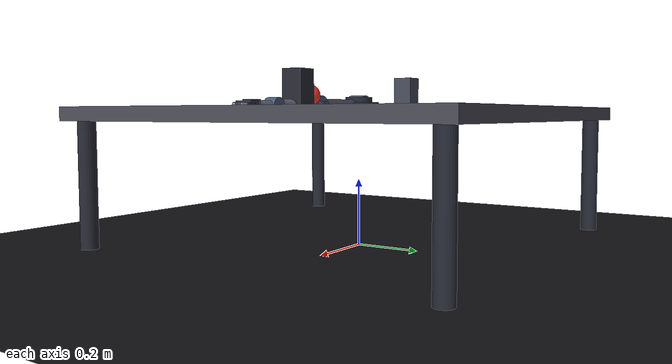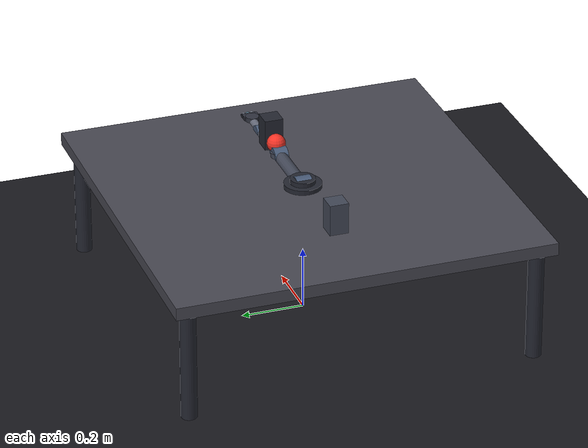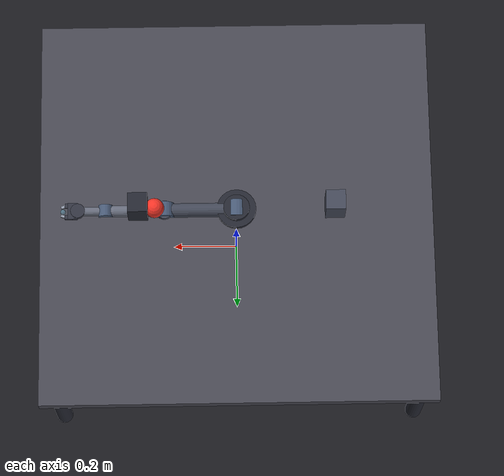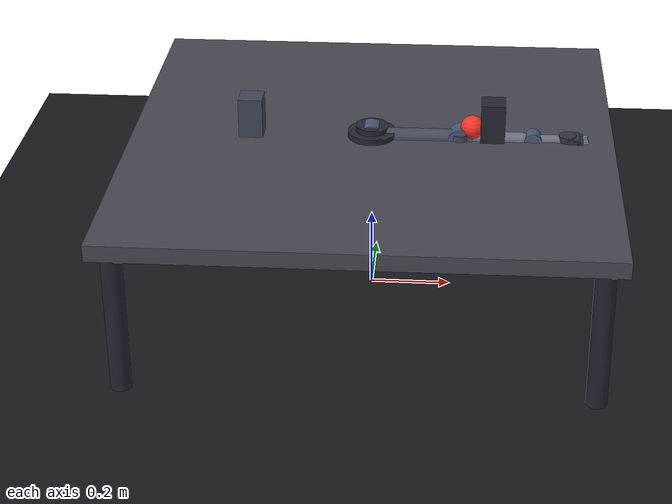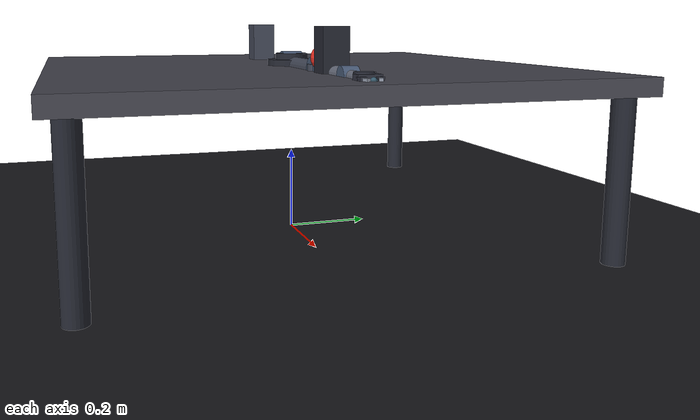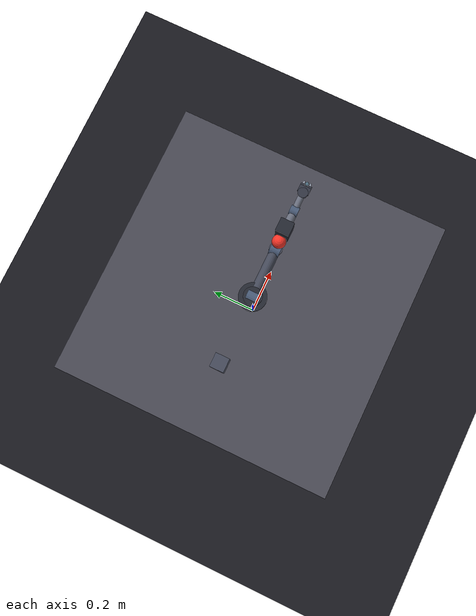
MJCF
<mujoco model="4dof_arm">

  <compiler angle="radian" coordinate="local"/>

  <option timestep="0.002" gravity="0 0 -9.81" integrator="implicit">
    <flag warmstart="enable"/>
  </option>

  <visual>
    <global offwidth="1280" offheight="720"/>
    <headlight diffuse="0.4 0.4 0.5" ambient="0.15 0.15 0.2" specular="0.3 0.3 0.3"/>
    <quality shadowsize="4096"/>
    <map fogstart="3" fogend="10"/>
    <rgba fog="0.04 0.04 0.08 1"/>
  </visual>

  <default>
    <joint armature="0.01" damping="0.5" limited="true"/>
    <geom contype="1" conaffinity="1" friction="0.5 0.1 0.1"/>
    <position kp="40" ctrlrange="-2.5 2.5"/>
  </default>

  <asset>
    <texture name="grid" type="2d" builtin="checker" width="512" height="512"
             rgb1="0.08 0.08 0.10" rgb2="0.12 0.12 0.14"/>
    <material name="grid_mat" texture="grid" texrepeat="5 5" reflectance="0.1"/>

    <!-- Robot materials — Gunmetal & Ice industrial palette -->
    <material name="metal_dark" rgba="0.14 0.15 0.19 1" specular="0.85" shininess="0.95"/>
    <material name="metal_blue" rgba="0.26 0.28 0.34 1" specular="0.7" shininess="0.8"/>
    <material name="metal_light" rgba="0.40 0.42 0.48 1" specular="0.75" shininess="0.85"/>
    <material name="joint_orange" rgba="0.28 0.35 0.46 1" specular="0.9" shininess="0.95"/>
    <material name="gripper_mat" rgba="0.19 0.20 0.25 1" specular="0.6" shininess="0.7"/>
    <material name="table_mat" rgba="0.28 0.28 0.32 1" specular="0.3" shininess="0.4"/>
    <material name="finger_tip" rgba="0.55 0.58 0.64 1" specular="0.95" shininess="1.0"/>
    <material name="ball_mat" rgba="0.95 0.2 0.15 1" specular="0.4" shininess="0.5"/>
  </asset>

  <worldbody>
    <!-- Scene lighting -->
    <light pos="0.8 -0.8 2.0" dir="-0.3 0.3 -0.8"
           diffuse="0.9 0.85 0.8" specular="0.4 0.4 0.4" castshadow="true"/>
    <light pos="-1.0 0.5 1.5" dir="0.5 -0.2 -0.7"
           diffuse="0.25 0.25 0.35" specular="0.05 0.05 0.05"/>
    <light pos="0.0 1.0 1.0" dir="0.0 -0.7 -0.3"
           diffuse="0.15 0.15 0.25" specular="0.15 0.15 0.15"/>

    <!-- Ground plane -->
    <geom name="ground" type="plane" size="2 2 0.1" material="grid_mat" conaffinity="1" contype="1"/>

    <!-- Table (centered on arm base) -->
    <body name="table" pos="0 0 0.4">
      <geom name="table_top" type="box" size="0.6 0.6 0.02" material="table_mat"
            conaffinity="1" contype="1" mass="10"/>
      <!-- Table legs -->
      <geom name="leg1" type="cylinder" pos="-0.55 -0.55 -0.2" size="0.025 0.18" material="metal_dark" contype="0" conaffinity="0"/>
      <geom name="leg2" type="cylinder" pos="0.55 -0.55 -0.2" size="0.025 0.18" material="metal_dark" contype="0" conaffinity="0"/>
      <geom name="leg3" type="cylinder" pos="-0.55 0.55 -0.2" size="0.025 0.18" material="metal_dark" contype="0" conaffinity="0"/>
      <geom name="leg4" type="cylinder" pos="0.55 0.55 -0.2" size="0.025 0.18" material="metal_dark" contype="0" conaffinity="0"/>
    </body>

    <!-- Platform pedestals (repositioned per episode at runtime) -->
    <geom name="platform_geom" type="box" size="0.03 0.03 0.05"
          pos="0.3 0 0.47" material="metal_dark"
          contype="1" conaffinity="1" mass="5"/>
    <geom name="dest_platform" type="box" size="0.03 0.03 0.05"
          pos="-0.3 0 0.47" material="metal_blue"
          contype="0" conaffinity="0" mass="5"/>

    <!-- Arm base (fixed to world at table height) -->
    <body name="arm_base" pos="0 0 0.42">
      <!-- Base mounting plate (fixed, cosmetic - overlaps table surface so non-colliding) -->
      <geom name="base_plate" type="cylinder" size="0.06 0.015" pos="0 0 0" material="metal_dark" mass="0.5" contype="0" conaffinity="0"/>

      <!-- Turret body (rotates around z-axis) -->
      <body name="arm_turret" pos="0 0 0">
        <joint name="base" type="hinge" axis="0 0 1" range="-3.14159 3.14159"
               damping="0.5" armature="0.02"/>

        <!-- Base column (rotates with turret, cosmetic - overlaps table so non-colliding) -->
        <geom name="base_column" type="cylinder" size="0.04 0.03" material="metal_dark" mass="0.5" contype="0" conaffinity="0"/>
        <!-- Shoulder housing (cosmetic) -->
        <geom name="shoulder_housing" type="cylinder" size="0.035 0.025" euler="1.5708 0 0"
              material="joint_orange" mass="0.2" contype="0" conaffinity="0"/>

        <!-- Link 1 (upper arm) -->
        <body name="link1" pos="0 0 0">
          <!-- Shoulder joint: rotates in x-z plane around y-axis -->
          <!-- Range [0, 1.5]: positive = upward, prevents arm going under table -->
          <joint name="shoulder" type="hinge" axis="0 -1 0" range="0 1.5"
                 damping="0.5" armature="0.02"/>

          <!-- Link 1 structure - robotic arm segment (shortened for 4-DOF) -->
          <geom name="link1_base" type="cylinder" size="0.028 0.015" material="metal_blue" mass="0.1" contype="1" conaffinity="1"/>
          <geom name="link1_main" type="capsule" fromto="0.015 0 0 0.205 0 0" size="0.022"
                material="metal_blue" mass="0.4" contype="1" conaffinity="1"/>
          <geom name="link1_end" type="cylinder" size="0.028 0.015" pos="0.22 0 0"
                material="metal_blue" mass="0.1" contype="1" conaffinity="1"/>

          <!-- Elbow joint housing -->
          <geom name="elbow_housing" type="cylinder" size="0.03 0.022" pos="0.22 0 0"
                euler="1.5708 0 0" material="joint_orange" mass="0.15" contype="0" conaffinity="0"/>

          <!-- Link 2 (forearm) at end of link 1 -->
          <body name="link2" pos="0.22 0 0">
            <!-- Elbow joint: rotates in x-z plane around y-axis -->
            <!-- Range [-1.8, 0.3]: mostly folding back, slight forward bend -->
            <joint name="elbow" type="hinge" axis="0 1 0" range="-1.8 0.3"
                   damping="0.3" armature="0.01"/>

            <!-- Link 2 structure -->
            <geom name="link2_base" type="cylinder" size="0.024 0.012" material="metal_light" mass="0.08" contype="1" conaffinity="1"/>
            <geom name="link2_main" type="capsule" fromto="0.012 0 0 0.155 0 0" size="0.018"
                  material="metal_light" mass="0.25" contype="1" conaffinity="1"/>

            <!-- Link 3 (wrist segment) at end of link 2 -->
            <body name="link3" pos="0.18 0 0">
              <!-- Wrist joint: pitch around y-axis -->
              <joint name="wrist" type="hinge" axis="0 1 0" range="-1.5 1.5"
                     damping="0.2" armature="0.005"/>

              <!-- Wrist housing (cosmetic) -->
              <geom name="wrist_housing" type="cylinder" size="0.022 0.018" euler="1.5708 0 0"
                    material="joint_orange" mass="0.1" contype="0" conaffinity="0"/>

              <!-- Link 3 structure -->
              <geom name="link3_main" type="capsule" fromto="0.008 0 0 0.075 0 0" size="0.014"
                    material="metal_light" mass="0.15" contype="1" conaffinity="1"/>

              <!-- Wrist/gripper mount -->
              <geom name="wrist_mount" type="cylinder" size="0.022 0.015" pos="0.085 0 0"
                    material="gripper_mat" mass="0.05" contype="1" conaffinity="1"/>

              <!-- Gripper body -->
              <body name="gripper" pos="0.10 0 0">
                <!-- Gripper palm -->
                <geom name="gripper_palm" type="box" size="0.015 0.025 0.012" material="gripper_mat" mass="0.03" contype="1" conaffinity="1"/>

                <!-- Left finger (fixed, visual only) -->
                <geom name="finger_left_base" type="box" pos="0.012 0.018 0" size="0.012 0.007 0.008"
                      material="gripper_mat" mass="0.01" contype="1" conaffinity="1"/>
                <geom name="finger_left_tip" type="box" pos="0.028 0.015 0" size="0.008 0.004 0.006"
                      euler="0 0 -0.3" material="finger_tip" mass="0.005" contype="1" conaffinity="1"/>

                <!-- Right finger (fixed, visual only) -->
                <geom name="finger_right_base" type="box" pos="0.012 -0.018 0" size="0.012 0.007 0.008"
                      material="gripper_mat" mass="0.01" contype="1" conaffinity="1"/>
                <geom name="finger_right_tip" type="box" pos="0.028 -0.015 0" size="0.008 0.004 0.006"
                      euler="0 0 0.3" material="finger_tip" mass="0.005" contype="1" conaffinity="1"/>
              </body>

              <!-- End-effector site at gripper center (between fingers) -->
              <site name="ee_site" pos="0.13 0 0" size="0.008" rgba="0.4 0.85 1.0 0.3"/>
            </body>
          </body>
        </body>
      </body>
    </body>

    <!-- Ball with freejoint (can move freely in 3D space) -->
    <body name="ball" pos="0.25 0 0.45">
      <freejoint name="ball_joint"/>
      <geom name="ball_geom" type="sphere" size="0.03" material="ball_mat"
            mass="0.05" friction="0.8 0.1 0.1" conaffinity="1" contype="1"/>
    </body>
  </worldbody>

  <!-- Position actuators for stable control -->
  <actuator>
    <position name="base_act" joint="base" kp="40" ctrlrange="-3.14159 3.14159"/>
    <position name="shoulder_act" joint="shoulder" kp="50" ctrlrange="0 1.5"/>
    <position name="elbow_act" joint="elbow" kp="40" ctrlrange="-1.8 0.3"/>
    <position name="wrist_act" joint="wrist" kp="30" ctrlrange="-1.5 1.5"/>
  </actuator>

  <!-- Weld constraint for grasp (initially inactive) -->
  <equality>
    <weld name="grasp_weld" body1="ball" body2="link3" relpose="0.13 0 0 1 0 0 0" active="false"/>
  </equality>

  <!-- Sensors for observation -->
  <sensor>
    <jointpos name="base_pos" joint="base"/>
    <jointpos name="shoulder_pos" joint="shoulder"/>
    <jointpos name="elbow_pos" joint="elbow"/>
    <jointpos name="wrist_pos" joint="wrist"/>
    <jointvel name="base_vel" joint="base"/>
    <jointvel name="shoulder_vel" joint="shoulder"/>
    <jointvel name="elbow_vel" joint="elbow"/>
    <jointvel name="wrist_vel" joint="wrist"/>
    <framepos name="ee_pos" objtype="site" objname="ee_site"/>
    <framepos name="ball_pos" objtype="body" objname="ball"/>
  </sensor>

</mujoco>
